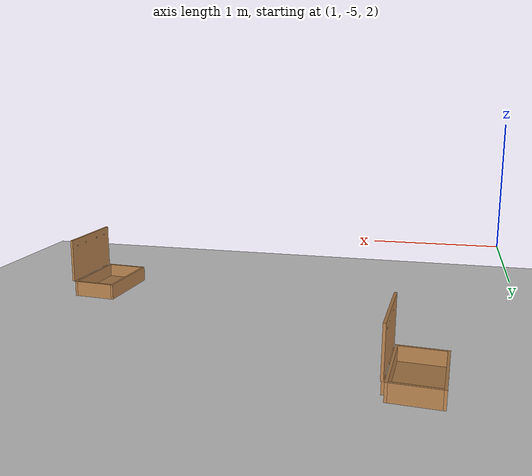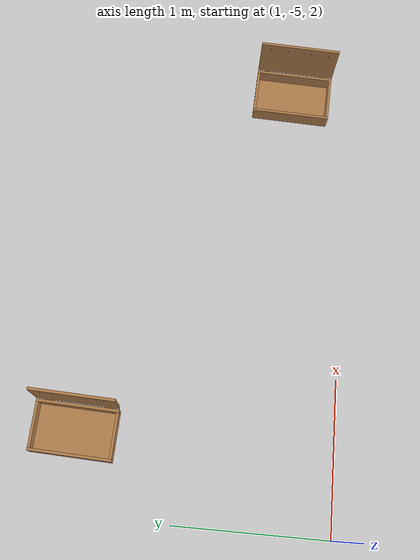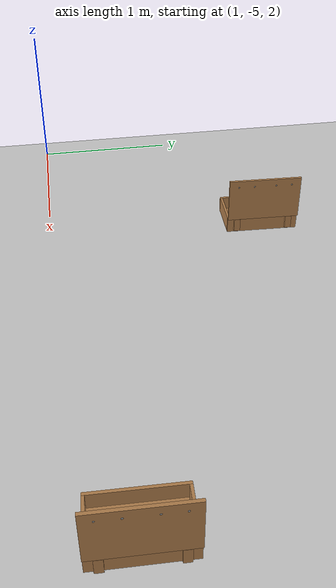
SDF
<sdf version="1.7">
 <world name="default">
  <model name="ground_plane">
   <static>1</static>
   <pose>0 0 1.5059 0 -0 0</pose>
   <link name="link">
    <collision name="collision">
     <pose>0 0 -0.002 0 -0 0</pose>
     <laser_retro>25</laser_retro>
     <geometry><plane><normal>0 0 1</normal><size>100 100</size></plane></geometry>
     <surface><friction><ode><mu>100</mu><mu2>50</mu2></ode></friction></surface>
    </collision>
    <visual name="visual">
     <pose>0 0 -0.003 0 -0 0</pose>
     <cast_shadows>0</cast_shadows>
     <geometry><plane><normal>0 0 1</normal><size>100 100</size></plane></geometry>
     <material>
      <script><uri>file://media/materials/scripts/gazebo.material</uri><name>Gazebo/Grey</name></script>
     </material>
    </visual>
   </link>
  </model>
  <model name="wooden_case_clone_0">
   <static>1</static>
   <link name="base">
    <pose>0 0 0.024 0 -0 0</pose>
    <inertial>
     <pose>-0.022184 0 0.171592 0 -0 0</pose>
     <mass>3.96264</mass>
     <inertia>
      <ixx>0.213536</ixx>
      <ixy>0</ixy>
      <ixz>0.000779377</ixz>
      <iyy>0.0708943</iyy>
      <iyz>0</iyz>
      <izz>0.154604</izz>
     </inertia>
    </inertial>
    <collision name="collision_back">
     <laser_retro>27</laser_retro>
     <pose>-0.053975 0 0.1778 0 -0 0</pose>
     <geometry><box><size>0.01905 0.5461 0.3175</size></box></geometry>
     <surface>
      <contact>
       <poissons_ratio>0.347</poissons_ratio>
       <elastic_modulus>8.8e+09</elastic_modulus>
       <ode><kp>100000</kp><kd>100</kd><max_vel>100</max_vel><min_depth>0.001</min_depth></ode>
      </contact>
      <friction>
       <torsional>
        <coefficient>1</coefficient>
        <use_patch_radius>0</use_patch_radius>
        <surface_radius>0.01</surface_radius>
       </torsional>
      </friction>
     </surface>
    </collision>
    <visual name="visual_back">
     <pose>-0.053975 0 0.1778 0 -0 0</pose>
     <geometry><box><size>0.01905 0.5461 0.3175</size></box></geometry>
     <material>
      <script><uri>file://media/materials/scripts/gazebo.material</uri><name>Gazebo/Wood</name></script>
     </material>
    </visual>
    <collision name="collision_bottom">
     <laser_retro>27</laser_retro>
     <pose>0 0 0.009525 0 -0 0</pose>
     <geometry><box><size>0.127 0.5842 0.01905</size></box></geometry>
     <surface>
      <contact>
       <poissons_ratio>0.347</poissons_ratio>
       <elastic_modulus>8.8e+09</elastic_modulus>
       <ode><kp>100000</kp><kd>100</kd><max_vel>100</max_vel><min_depth>0.001</min_depth></ode>
      </contact>
      <friction>
       <torsional>
        <coefficient>1</coefficient>
        <use_patch_radius>0</use_patch_radius>
        <surface_radius>0.01</surface_radius>
       </torsional>
      </friction>
     </surface>
    </collision>
    <visual name="visual_bottom">
     <pose>0 0 0.009525 0 -0 0</pose>
     <geometry><box><size>0.127 0.5842 0.01905</size></box></geometry>
     <material>
      <script><uri>file://media/materials/scripts/gazebo.material</uri><name>Gazebo/Wood</name></script>
     </material>
    </visual>
    <collision name="collision_top">
     <laser_retro>27</laser_retro>
     <pose>0 0 0.346075 0 -0 0</pose>
     <geometry><box><size>0.127 0.5842 0.01905</size></box></geometry>
     <surface>
      <contact>
       <poissons_ratio>0.347</poissons_ratio>
       <elastic_modulus>8.8e+09</elastic_modulus>
       <ode><kp>100000</kp><kd>100</kd><max_vel>100</max_vel><min_depth>0.001</min_depth></ode>
      </contact>
      <friction>
       <torsional>
        <coefficient>1</coefficient>
        <use_patch_radius>0</use_patch_radius>
        <surface_radius>0.01</surface_radius>
       </torsional>
      </friction>
     </surface>
    </collision>
    <visual name="visual_top">
     <pose>0 0 0.346075 0 -0 0</pose>
     <geometry><box><size>0.127 0.5842 0.01905</size></box></geometry>
     <material>
      <script><uri>file://media/materials/scripts/gazebo.material</uri><name>Gazebo/Wood</name></script>
     </material>
    </visual>
    <collision name="collision_left">
     <laser_retro>27</laser_retro>
     <pose>0 -0.282575 0.1778 0 -0 0</pose>
     <geometry><box><size>0.127 0.01905 0.3175</size></box></geometry>
     <surface>
      <contact>
       <poissons_ratio>0.347</poissons_ratio>
       <elastic_modulus>8.8e+09</elastic_modulus>
       <ode><kp>100000</kp><kd>100</kd><max_vel>100</max_vel><min_depth>0.001</min_depth></ode>
      </contact>
      <friction>
       <torsional>
        <coefficient>1</coefficient>
        <use_patch_radius>0</use_patch_radius>
        <surface_radius>0.01</surface_radius>
       </torsional>
      </friction>
     </surface>
    </collision>
    <visual name="visual_left">
     <pose>0 -0.282575 0.1778 0 -0 0</pose>
     <geometry><box><size>0.127 0.01905 0.3175</size></box></geometry>
     <material>
      <script><uri>file://media/materials/scripts/gazebo.material</uri><name>Gazebo/Wood</name></script>
     </material>
    </visual>
    <collision name="collision_right">
     <laser_retro>27</laser_retro>
     <pose>0 0.282575 0.1778 0 -0 0</pose>
     <geometry><box><size>0.127 0.01905 0.3175</size></box></geometry>
     <surface>
      <contact>
       <poissons_ratio>0.347</poissons_ratio>
       <elastic_modulus>8.8e+09</elastic_modulus>
       <ode><kp>100000</kp><kd>100</kd><max_vel>100</max_vel><min_depth>0.001</min_depth></ode>
      </contact>
      <friction>
       <torsional>
        <coefficient>1</coefficient>
        <use_patch_radius>0</use_patch_radius>
        <surface_radius>0.01</surface_radius>
       </torsional>
      </friction>
     </surface>
    </collision>
    <visual name="visual_right">
     <pose>0 0.282575 0.1778 0 -0 0</pose>
     <geometry><box><size>0.127 0.01905 0.3175</size></box></geometry>
     <material>
      <script><uri>file://media/materials/scripts/gazebo.material</uri><name>Gazebo/Wood</name></script>
     </material>
    </visual>
    <collision name="collision_block_left">
     <laser_retro>27</laser_retro>
     <pose>0.0095 -0.2151 -0.012 0 -0 0</pose>
     <geometry><box><size>0.108 0.05 0.024</size></box></geometry>
     <surface>
      <contact>
       <poissons_ratio>0.347</poissons_ratio>
       <elastic_modulus>8.8e+09</elastic_modulus>
       <ode><kp>100000</kp><kd>100</kd><max_vel>100</max_vel><min_depth>0.001</min_depth></ode>
      </contact>
      <friction>
       <torsional>
        <coefficient>1</coefficient>
        <use_patch_radius>0</use_patch_radius>
        <surface_radius>0.01</surface_radius>
       </torsional>
      </friction>
     </surface>
    </collision>
    <visual name="visual_block_left">
     <pose>0.0095 -0.2151 -0.012 0 -0 0</pose>
     <geometry><box><size>0.108 0.05 0.024</size></box></geometry>
     <material>
      <script><uri>file://media/materials/scripts/gazebo.material</uri><name>Gazebo/Wood</name></script>
     </material>
    </visual>
    <collision name="collision_block_right">
     <laser_retro>27</laser_retro>
     <pose>0.0095 0.2151 -0.012 0 -0 0</pose>
     <geometry><box><size>0.108 0.05 0.024</size></box></geometry>
     <surface>
      <contact>
       <poissons_ratio>0.347</poissons_ratio>
       <elastic_modulus>8.8e+09</elastic_modulus>
       <ode><kp>100000</kp><kd>100</kd><max_vel>100</max_vel><min_depth>0.001</min_depth></ode>
      </contact>
      <friction>
       <torsional>
        <coefficient>1</coefficient>
        <use_patch_radius>0</use_patch_radius>
        <surface_radius>0.01</surface_radius>
       </torsional>
      </friction>
     </surface>
    </collision>
    <visual name="visual_block_right">
     <pose>0.0095 0.2151 -0.012 0 -0 0</pose>
     <geometry><box><size>0.108 0.05 0.024</size></box></geometry>
     <material>
      <script><uri>file://media/materials/scripts/gazebo.material</uri><name>Gazebo/Wood</name></script>
     </material>
    </visual>
   </link>
   <link name="lid">
    <pose>0.243775 0 0.009525 0 -0 0</pose>
    <inertial>
     <mass>1.97874</mass>
     <inertia>
      <ixx>0.0563367</ixx>
      <ixy>0</ixy>
      <ixz>0</ixz>
      <iyy>0.020911</iyy>
      <iyz>0</iyz>
      <izz>0.0771281</izz>
     </inertia>
    </inertial>
    <collision name="collision">
     <laser_retro>27</laser_retro>
     <geometry><box><size>0.3556 0.5842 0.01905</size></box></geometry>
     <surface>
      <contact>
       <poissons_ratio>0.347</poissons_ratio>
       <elastic_modulus>8.8e+09</elastic_modulus>
       <ode><kp>100000</kp><kd>100</kd><max_vel>100</max_vel><min_depth>0.001</min_depth></ode>
      </contact>
      <friction>
       <torsional>
        <coefficient>1</coefficient>
        <use_patch_radius>0</use_patch_radius>
        <surface_radius>0.01</surface_radius>
       </torsional>
      </friction>
     </surface>
    </collision>
    <visual name="visual">
     <geometry><box><size>0.3556 0.5842 0.01905</size></box></geometry>
     <material>
      <script><uri>file://media/materials/scripts/gazebo.material</uri><name>Gazebo/Wood</name></script>
     </material>
    </visual>
    <visual name="tee_nut_1">
     <pose>0.122 -0.216 0 0 -0 0</pose>
     <geometry><cylinder><radius>0.00635</radius><length>0.0192405</length></cylinder></geometry>
     <material>
      <script><uri>file://media/materials/scripts/gazebo.material</uri><name>Gazebo/Grey</name></script>
     </material>
    </visual>
    <visual name="tee_nut_2">
     <pose>0.122 -0.088 0 0 -0 0</pose>
     <geometry><cylinder><radius>0.00635</radius><length>0.0192405</length></cylinder></geometry>
     <material>
      <script><uri>file://media/materials/scripts/gazebo.material</uri><name>Gazebo/Grey</name></script>
     </material>
    </visual>
    <visual name="tee_nut_3">
     <pose>0.122 0.088 0 0 -0 0</pose>
     <geometry><cylinder><radius>0.00635</radius><length>0.0192405</length></cylinder></geometry>
     <material>
      <script><uri>file://media/materials/scripts/gazebo.material</uri><name>Gazebo/Grey</name></script>
     </material>
    </visual>
    <visual name="tee_nut_4">
     <pose>0.122 0.216 0 0 -0 0</pose>
     <geometry><cylinder><radius>0.00635</radius><length>0.0192405</length></cylinder></geometry>
     <material>
      <script><uri>file://media/materials/scripts/gazebo.material</uri><name>Gazebo/Grey</name></script>
     </material>
    </visual>
   </link>
   <joint name="lid_hinge" type="revolute">
    <pose>-0.1778 0 0.01905 0 -0 0</pose>
    <parent>base</parent>
    <child>lid</child>
    <axis>
     <xyz>0 1 0</xyz>
     <limit><upper>0.523599</upper><lower>-1.5708</lower></limit>
     <dynamics><spring_reference>0</spring_reference><spring_stiffness>0</spring_stiffness></dynamics>
    </axis>
   </joint>
   <pose>4.51041 -4.64957 1.59 2.96336 -1.55928 -3.00931</pose>
  </model>
  <model name="wooden_case_clone_2">
   <static>1</static>
   <link name="base">
    <pose>0 0 0.024 0 -0 0</pose>
    <inertial>
     <pose>-0.022184 0 0.171592 0 -0 0</pose>
     <mass>3.96264</mass>
     <inertia>
      <ixx>0.213536</ixx>
      <ixy>0</ixy>
      <ixz>0.000779377</ixz>
      <iyy>0.0708943</iyy>
      <iyz>0</iyz>
      <izz>0.154604</izz>
     </inertia>
    </inertial>
    <collision name="collision_back">
     <laser_retro>29</laser_retro>
     <pose>-0.053975 0 0.1778 0 -0 0</pose>
     <geometry><box><size>0.01905 0.5461 0.3175</size></box></geometry>
     <surface>
      <contact>
       <poissons_ratio>0.347</poissons_ratio>
       <elastic_modulus>8.8e+09</elastic_modulus>
       <ode><kp>100000</kp><kd>100</kd><max_vel>100</max_vel><min_depth>0.001</min_depth></ode>
      </contact>
      <friction>
       <torsional>
        <coefficient>1</coefficient>
        <use_patch_radius>0</use_patch_radius>
        <surface_radius>0.01</surface_radius>
       </torsional>
      </friction>
     </surface>
    </collision>
    <visual name="visual_back">
     <pose>-0.053975 0 0.1778 0 -0 0</pose>
     <geometry><box><size>0.01905 0.5461 0.3175</size></box></geometry>
     <material>
      <script><uri>file://media/materials/scripts/gazebo.material</uri><name>Gazebo/Wood</name></script>
     </material>
    </visual>
    <collision name="collision_bottom">
     <laser_retro>29</laser_retro>
     <pose>0 0 0.009525 0 -0 0</pose>
     <geometry><box><size>0.127 0.5842 0.01905</size></box></geometry>
     <surface>
      <contact>
       <poissons_ratio>0.347</poissons_ratio>
       <elastic_modulus>8.8e+09</elastic_modulus>
       <ode><kp>100000</kp><kd>100</kd><max_vel>100</max_vel><min_depth>0.001</min_depth></ode>
      </contact>
      <friction>
       <torsional>
        <coefficient>1</coefficient>
        <use_patch_radius>0</use_patch_radius>
        <surface_radius>0.01</surface_radius>
       </torsional>
      </friction>
     </surface>
    </collision>
    <visual name="visual_bottom">
     <pose>0 0 0.009525 0 -0 0</pose>
     <geometry><box><size>0.127 0.5842 0.01905</size></box></geometry>
     <material>
      <script><uri>file://media/materials/scripts/gazebo.material</uri><name>Gazebo/Wood</name></script>
     </material>
    </visual>
    <collision name="collision_top">
     <laser_retro>29</laser_retro>
     <pose>0 0 0.346075 0 -0 0</pose>
     <geometry><box><size>0.127 0.5842 0.01905</size></box></geometry>
     <surface>
      <contact>
       <poissons_ratio>0.347</poissons_ratio>
       <elastic_modulus>8.8e+09</elastic_modulus>
       <ode><kp>100000</kp><kd>100</kd><max_vel>100</max_vel><min_depth>0.001</min_depth></ode>
      </contact>
      <friction>
       <torsional>
        <coefficient>1</coefficient>
        <use_patch_radius>0</use_patch_radius>
        <surface_radius>0.01</surface_radius>
       </torsional>
      </friction>
     </surface>
    </collision>
    <visual name="visual_top">
     <pose>0 0 0.346075 0 -0 0</pose>
     <geometry><box><size>0.127 0.5842 0.01905</size></box></geometry>
     <material>
      <script><uri>file://media/materials/scripts/gazebo.material</uri><name>Gazebo/Wood</name></script>
     </material>
    </visual>
    <collision name="collision_left">
     <laser_retro>29</laser_retro>
     <pose>0 -0.282575 0.1778 0 -0 0</pose>
     <geometry><box><size>0.127 0.01905 0.3175</size></box></geometry>
     <surface>
      <contact>
       <poissons_ratio>0.347</poissons_ratio>
       <elastic_modulus>8.8e+09</elastic_modulus>
       <ode><kp>100000</kp><kd>100</kd><max_vel>100</max_vel><min_depth>0.001</min_depth></ode>
      </contact>
      <friction>
       <torsional>
        <coefficient>1</coefficient>
        <use_patch_radius>0</use_patch_radius>
        <surface_radius>0.01</surface_radius>
       </torsional>
      </friction>
     </surface>
    </collision>
    <visual name="visual_left">
     <pose>0 -0.282575 0.1778 0 -0 0</pose>
     <geometry><box><size>0.127 0.01905 0.3175</size></box></geometry>
     <material>
      <script><uri>file://media/materials/scripts/gazebo.material</uri><name>Gazebo/Wood</name></script>
     </material>
    </visual>
    <collision name="collision_right">
     <laser_retro>29</laser_retro>
     <pose>0 0.282575 0.1778 0 -0 0</pose>
     <geometry><box><size>0.127 0.01905 0.3175</size></box></geometry>
     <surface>
      <contact>
       <poissons_ratio>0.347</poissons_ratio>
       <elastic_modulus>8.8e+09</elastic_modulus>
       <ode><kp>100000</kp><kd>100</kd><max_vel>100</max_vel><min_depth>0.001</min_depth></ode>
      </contact>
      <friction>
       <torsional>
        <coefficient>1</coefficient>
        <use_patch_radius>0</use_patch_radius>
        <surface_radius>0.01</surface_radius>
       </torsional>
      </friction>
     </surface>
    </collision>
    <visual name="visual_right">
     <pose>0 0.282575 0.1778 0 -0 0</pose>
     <geometry><box><size>0.127 0.01905 0.3175</size></box></geometry>
     <material>
      <script><uri>file://media/materials/scripts/gazebo.material</uri><name>Gazebo/Wood</name></script>
     </material>
    </visual>
    <collision name="collision_block_left">
     <laser_retro>29</laser_retro>
     <pose>0.0095 -0.2151 -0.012 0 -0 0</pose>
     <geometry><box><size>0.108 0.05 0.024</size></box></geometry>
     <surface>
      <contact>
       <poissons_ratio>0.347</poissons_ratio>
       <elastic_modulus>8.8e+09</elastic_modulus>
       <ode><kp>100000</kp><kd>100</kd><max_vel>100</max_vel><min_depth>0.001</min_depth></ode>
      </contact>
      <friction>
       <torsional>
        <coefficient>1</coefficient>
        <use_patch_radius>0</use_patch_radius>
        <surface_radius>0.01</surface_radius>
       </torsional>
      </friction>
     </surface>
    </collision>
    <visual name="visual_block_left">
     <pose>0.0095 -0.2151 -0.012 0 -0 0</pose>
     <geometry><box><size>0.108 0.05 0.024</size></box></geometry>
     <material>
      <script><uri>file://media/materials/scripts/gazebo.material</uri><name>Gazebo/Wood</name></script>
     </material>
    </visual>
    <collision name="collision_block_right">
     <laser_retro>29</laser_retro>
     <pose>0.0095 0.2151 -0.012 0 -0 0</pose>
     <geometry><box><size>0.108 0.05 0.024</size></box></geometry>
     <surface>
      <contact>
       <poissons_ratio>0.347</poissons_ratio>
       <elastic_modulus>8.8e+09</elastic_modulus>
       <ode><kp>100000</kp><kd>100</kd><max_vel>100</max_vel><min_depth>0.001</min_depth></ode>
      </contact>
      <friction>
       <torsional>
        <coefficient>1</coefficient>
        <use_patch_radius>0</use_patch_radius>
        <surface_radius>0.01</surface_radius>
       </torsional>
      </friction>
     </surface>
    </collision>
    <visual name="visual_block_right">
     <pose>0.0095 0.2151 -0.012 0 -0 0</pose>
     <geometry><box><size>0.108 0.05 0.024</size></box></geometry>
     <material>
      <script><uri>file://media/materials/scripts/gazebo.material</uri><name>Gazebo/Wood</name></script>
     </material>
    </visual>
   </link>
   <link name="lid">
    <pose>0.243775 0 0.009525 0 -0 0</pose>
    <inertial>
     <mass>1.97874</mass>
     <inertia>
      <ixx>0.0563367</ixx>
      <ixy>0</ixy>
      <ixz>0</ixz>
      <iyy>0.020911</iyy>
      <iyz>0</iyz>
      <izz>0.0771281</izz>
     </inertia>
    </inertial>
    <collision name="collision">
     <laser_retro>29</laser_retro>
     <geometry><box><size>0.3556 0.5842 0.01905</size></box></geometry>
     <surface>
      <contact>
       <poissons_ratio>0.347</poissons_ratio>
       <elastic_modulus>8.8e+09</elastic_modulus>
       <ode><kp>100000</kp><kd>100</kd><max_vel>100</max_vel><min_depth>0.001</min_depth></ode>
      </contact>
      <friction>
       <torsional>
        <coefficient>1</coefficient>
        <use_patch_radius>0</use_patch_radius>
        <surface_radius>0.01</surface_radius>
       </torsional>
      </friction>
     </surface>
    </collision>
    <visual name="visual">
     <geometry><box><size>0.3556 0.5842 0.01905</size></box></geometry>
     <material>
      <script><uri>file://media/materials/scripts/gazebo.material</uri><name>Gazebo/Wood</name></script>
     </material>
    </visual>
    <visual name="tee_nut_1">
     <pose>0.122 -0.216 0 0 -0 0</pose>
     <geometry><cylinder><radius>0.00635</radius><length>0.0192405</length></cylinder></geometry>
     <material>
      <script><uri>file://media/materials/scripts/gazebo.material</uri><name>Gazebo/Grey</name></script>
     </material>
    </visual>
    <visual name="tee_nut_2">
     <pose>0.122 -0.088 0 0 -0 0</pose>
     <geometry><cylinder><radius>0.00635</radius><length>0.0192405</length></cylinder></geometry>
     <material>
      <script><uri>file://media/materials/scripts/gazebo.material</uri><name>Gazebo/Grey</name></script>
     </material>
    </visual>
    <visual name="tee_nut_3">
     <pose>0.122 0.088 0 0 -0 0</pose>
     <geometry><cylinder><radius>0.00635</radius><length>0.0192405</length></cylinder></geometry>
     <material>
      <script><uri>file://media/materials/scripts/gazebo.material</uri><name>Gazebo/Grey</name></script>
     </material>
    </visual>
    <visual name="tee_nut_4">
     <pose>0.122 0.216 0 0 -0 0</pose>
     <geometry><cylinder><radius>0.00635</radius><length>0.0192405</length></cylinder></geometry>
     <material>
      <script><uri>file://media/materials/scripts/gazebo.material</uri><name>Gazebo/Grey</name></script>
     </material>
    </visual>
   </link>
   <joint name="lid_hinge" type="revolute">
    <pose>-0.1778 0 0.01905 0 -0 0</pose>
    <parent>base</parent>
    <child>lid</child>
    <axis>
     <xyz>0 1 0</xyz>
     <limit><upper>0.523599</upper><lower>-1.5708</lower></limit>
     <dynamics><spring_reference>0</spring_reference><spring_stiffness>0</spring_stiffness></dynamics>
    </axis>
   </joint>
   <pose>1.76669 -3.28224 1.59 2.96336 -1.55928 -3.00931</pose>
  </model>
 </world>
</sdf>
